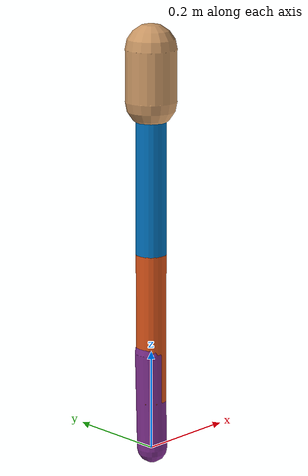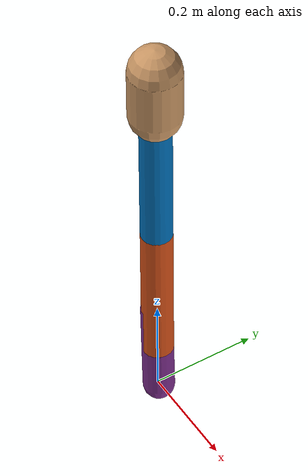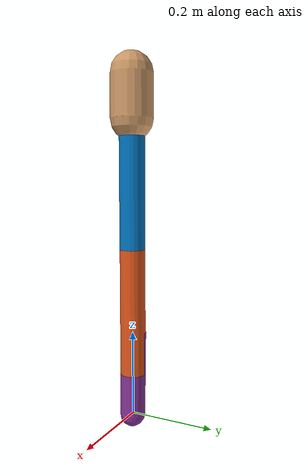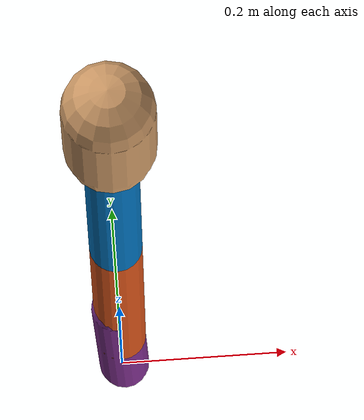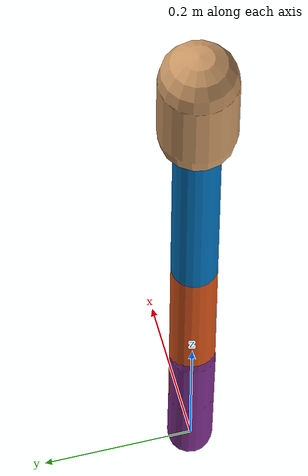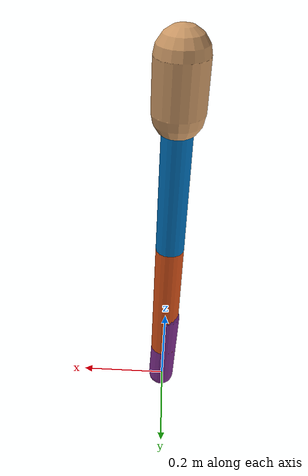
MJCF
<mujoco model="sustech_biped2d">
    <compiler angle="degree" coordinate="local" inertiafromgeom="true"/>
    <default>
        <joint armature="0" damping="0.0" limited="true" solimplimit="0 .8 .03" solreflimit=".02 1" stiffness="0"/>
        <geom conaffinity="0" condim="3" contype="1" friction=".9 .1 .1" rgba="0.8 0.6 .4 1" solimp="0.0 0.8 0.01"
              solref="0.02 1"/>
    </default>
    <size nstack="300000" nuser_geom="1"/>
    <option gravity="0 0 -9.81" timestep="0.002"/>
    <worldbody>
        <body name="torso" pos="0 0 0.7">
            <joint armature="0" axis="1 0 0" damping="0" limited="false" name="rootx" pos="0 0 0" stiffness="0"
                   type="slide"/>
            <joint armature="0" axis="0 0 1" damping="0" limited="false" name="rootz" pos="0 0 0" stiffness="0"
                   type="slide"/>
            <joint armature="0" axis="0 -1 0" damping="0" limited="false" name="rooty" pos="0 0 0" stiffness="0"
                   type="hinge"/>
            <inertial pos="0 0 0.05" mass="50"/>-
            <geom fromto="0 0 0 0 0 0.1" name="torso" size="0.05" type="capsule"/>
            <body name="lthigh" pos="0 0 0">
                <joint axis="0 -1 0" damping="0.0" name="lthigh" pos="0 0 0" range="-45 135" stiffness="0"
                       type="hinge"/>
                <inertial pos="0 0 -0.15" mass="0.5"/>
                <geom axisangle="0 -1 0 0" name="lthigh" pos="0 0 -0.15" rgba="0 0.4470 0.7410 1"
                      size="0.03 0.15" type="capsule"/>
                <body name="lshin" pos="0 0 -0.3">
                    <joint axis="0 -1 0" damping="0.0" name="lshin" pos="0 0 0" range="-135 0" stiffness="0"
                           type="hinge"/>
                    <inertial pos="0 0 -0.15" mass="0.5"/>
                    <geom axisangle="0 -1 0 0" name="lshin" pos="0 0 -0.15" rgba="0.8500 0.3250 0.0980 1"
                          size="0.03 0.15" type="capsule"/>
                    <body name="lfoot" pos="0 0 -0.3">
                        <joint axis="0 -1 0" damping="0.0" name="lfoot" pos="0 0 0" range="-80 80" stiffness="0"
                               type="hinge"/>
                        <inertial pos="0 0 0" axisangle="0 -1 0 90" mass="0.2"/>
                        <geom axisangle="0 -1 0 1.5707963267948966" name="lfoot" pos="0 0 0" rgba="0.4940  0.1840 0.5560 1"
                              size="0.03 0.10" type="capsule"/>
                    </body>
                </body>
            </body>
            <body name="rthigh" pos="0 0 0">
                <joint axis="0 -1 0" damping="0.0" name="rthigh" pos="0 0 0" range="-45 135" stiffness="0"
                       type="hinge"/>
                <inertial pos="0 0 -0.15" mass="0.5"/>
                <geom axisangle="0 -1 0 0" name="rthigh" pos="0 0 -0.15" rgba="0.8500 0.3250 0.0980 1"
                      size="0.03 0.15" type="capsule"/>
                <body name="rshin" pos="0 0 -0.3">
                    <joint axis="0 -1 0" damping="0.0" name="rshin" pos="0 0 0" range="-135 0" stiffness="0"
                           type="hinge"/>
                    <inertial pos="0 0 -0.15" mass="0.5"/>
                    <geom axisangle="0 -1 0 0" name="rshin" pos="0 0 -0.15" rgba="0.4940 0.1840 0.5560 1"
                          size="0.03 0.15" type="capsule"/>
                    <body name="rfoot" pos="0 0 -0.3">
                        <joint axis="0 -1 0" damping="0.0" name="rfoot" pos="0 0 0" range="-80 80" stiffness="0"
                               type="hinge"/>
                        <inertial pos="0 0 0" axisangle="0 -1 0 90" mass="0.2" diaginertia="0.0007 0.0007 0.00009"/>
                        <geom axisangle="0 -1 0 1.5707963267948966" name="rfoot" pos="0 0 0" rgba="0 0.4470 0.7410 1"
                              size="0.03 0.10" type="capsule"/>
                    </body>
                </body>
            </body>
        </body>
    </worldbody>
    <actuator>
        <motor ctrllimited="true" ctrlrange="-100.0 100.0" gear="1" joint="lthigh" name="lthigh"/>
        <motor ctrllimited="true" ctrlrange="-100.0 100.0" gear="1" joint="lshin" name="lshin"/>
        <motor ctrllimited="true" ctrlrange="-100.0 100.0" gear="1" joint="lfoot" name="lfoot"/>
        <motor ctrllimited="true" ctrlrange="-100.0 100.0" gear="1" joint="rthigh" name="rthigh"/>
        <motor ctrllimited="true" ctrlrange="-100.0 100.0" gear="1" joint="rshin" name="rshin"/>
        <motor ctrllimited="true" ctrlrange="-100.0 100.0" gear="1" joint="rfoot" name="rfoot"/>
    </actuator>
</mujoco>
